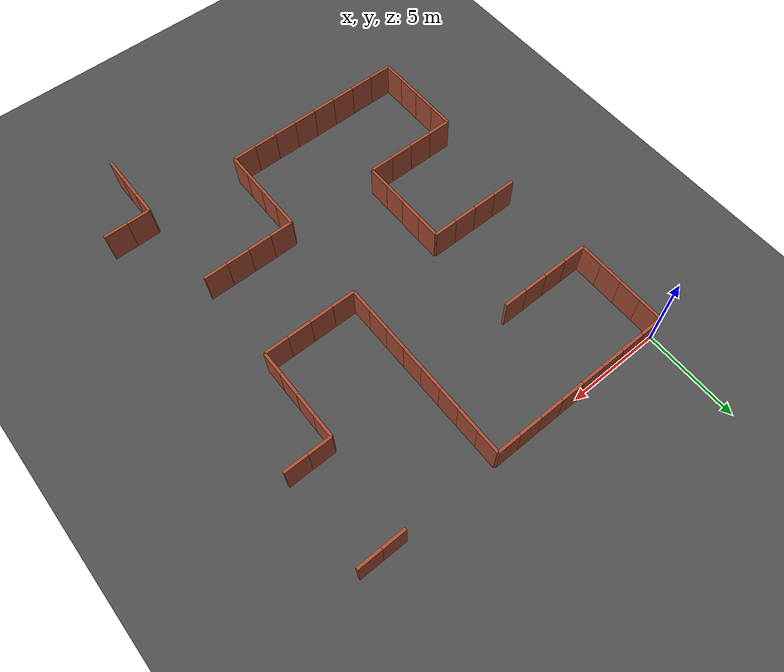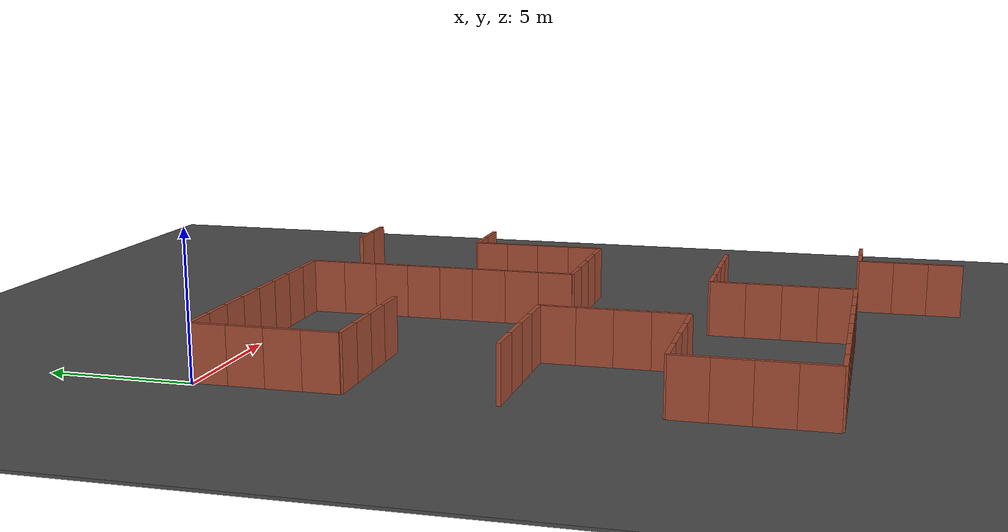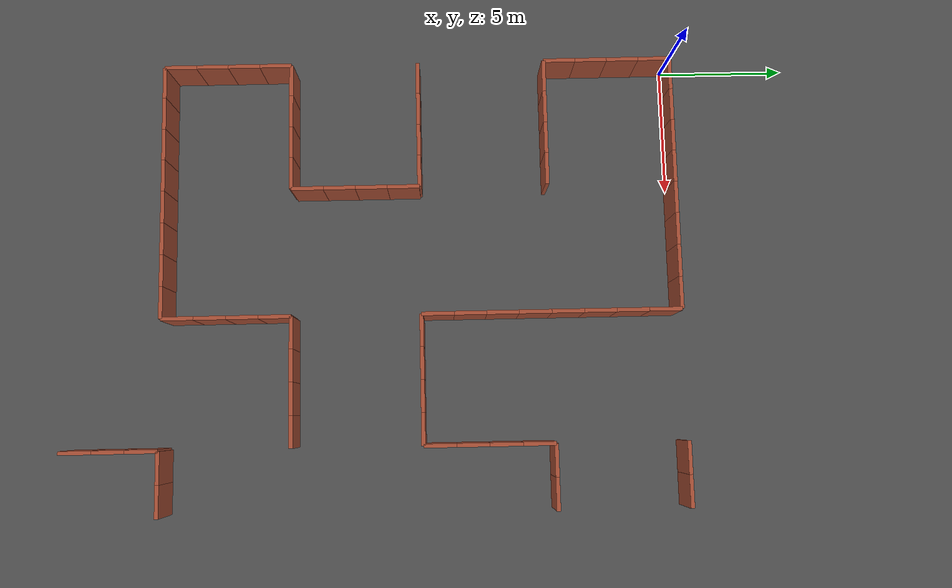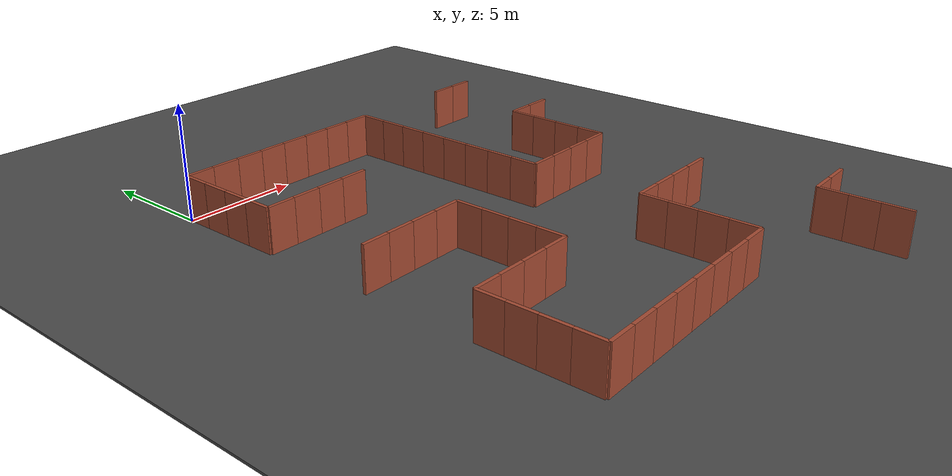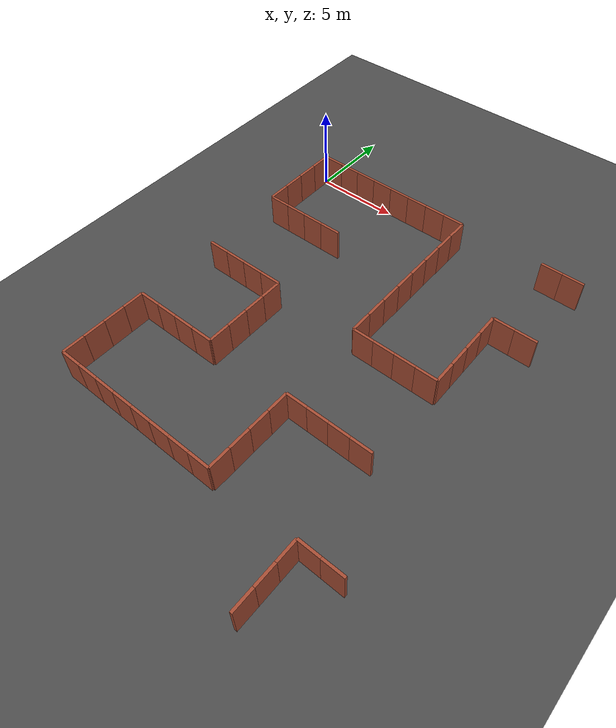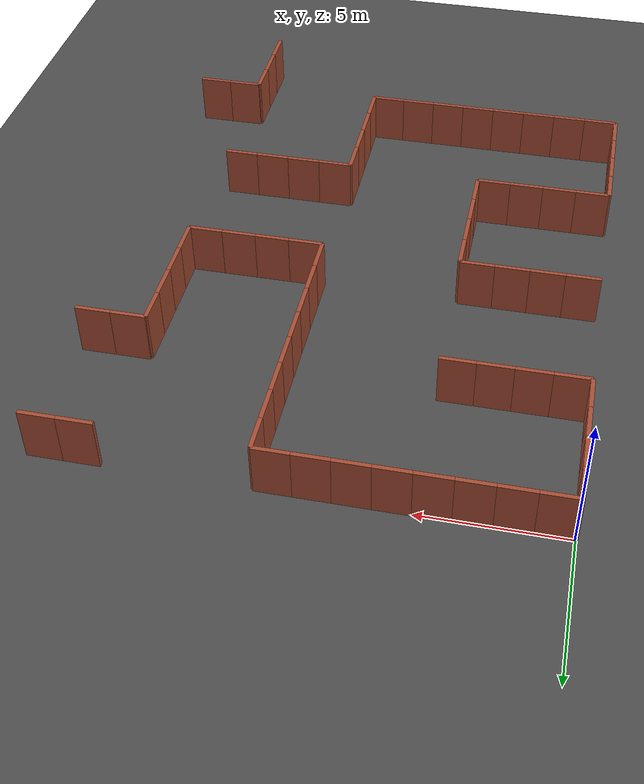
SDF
<sdf version="1.6">
 <world name="default">
  <model name="ground_plane">
   <static>1</static>
   <link name="link">
    <collision name="collision">
     <geometry><plane><normal>0 0 1</normal><size>100 100</size></plane></geometry>
     <surface><friction><ode><mu>100</mu><mu2>50</mu2></ode></friction></surface>
    </collision>
    <visual name="visual">
     <cast_shadows>0</cast_shadows>
     <geometry><plane><normal>0 0 1</normal><size>100 100</size></plane></geometry>
     <material>
      <script><uri>file://media/materials/scripts/gazebo.material</uri><name>Gazebo/Grey</name></script>
     </material>
    </visual>
   </link>
  </model>
  <model name="asphalt_plane">
   <static>1</static>
   <link name="link">
    <collision name="collision"><geometry><box><size>100 100 0.1</size></box></geometry></collision>
    <visual name="visual">
     <cast_shadows>0</cast_shadows>
     <geometry><box><size>100 100 0.1</size></box></geometry>
     <material>
      <script>
       <uri>model://asphalt_plane/materials/scripts</uri>
       <uri>model://asphalt_plane/materials/textures</uri>
       <name>vrc/asphalt</name>
      </script>
     </material>
    </visual>
   </link>
  </model>
  <model name="brick_wall_20_12_vertical1">
   <pose>0.625 -20 0 0 -0 0</pose>
   <link name="Wall_0">
    <collision name="Wall_0_Collision">
     <geometry><box><size>1.25 0.15 2</size></box></geometry>
     <pose>0 0 1 0 -0 0</pose>
    </collision>
    <visual name="Wall_0_Visual">
     <pose>0 0 1 0 -0 0</pose>
     <geometry><box><size>1.25 0.15 2</size></box></geometry>
     <material>
      <script><uri>file://media/materials/scripts/gazebo.material</uri><name>Gazebo/Bricks</name></script>
      <ambient>1 1 1 1</ambient>
     </material>
     <meta><layer>0</layer></meta>
    </visual>
   </link>
   <static>1</static>
  </model>
  <model name="brick_wall_20_12_horizontal1">
   <pose>0 -19.375 0 0 -0 1.5708</pose>
   <link name="Wall_0">
    <collision name="Wall_0_Collision">
     <geometry><box><size>1.25 0.15 2</size></box></geometry>
     <pose>0 0 1 0 -0 0</pose>
    </collision>
    <visual name="Wall_0_Visual">
     <pose>0 0 1 0 -0 0</pose>
     <geometry><box><size>1.25 0.15 2</size></box></geometry>
     <material>
      <script><uri>file://media/materials/scripts/gazebo.material</uri><name>Gazebo/Bricks</name></script>
      <ambient>1 1 1 1</ambient>
     </material>
     <meta><layer>0</layer></meta>
    </visual>
   </link>
   <static>1</static>
  </model>
  <model name="brick_wall_20_13_horizontal1">
   <pose>0 -16.875 0 0 -0 1.5708</pose>
   <link name="Wall_0">
    <collision name="Wall_0_Collision">
     <geometry><box><size>1.25 0.15 2</size></box></geometry>
     <pose>0 0 1 0 -0 0</pose>
    </collision>
    <visual name="Wall_0_Visual">
     <pose>0 0 1 0 -0 0</pose>
     <geometry><box><size>1.25 0.15 2</size></box></geometry>
     <material>
      <script><uri>file://media/materials/scripts/gazebo.material</uri><name>Gazebo/Bricks</name></script>
      <ambient>1 1 1 1</ambient>
     </material>
     <meta><layer>0</layer></meta>
    </visual>
   </link>
   <static>1</static>
  </model>
  <model name="brick_wall_20_13_horizontal2">
   <pose>0 -18.125 0 0 -0 1.5708</pose>
   <link name="Wall_0">
    <collision name="Wall_0_Collision">
     <geometry><box><size>1.25 0.15 2</size></box></geometry>
     <pose>0 0 1 0 -0 0</pose>
    </collision>
    <visual name="Wall_0_Visual">
     <pose>0 0 1 0 -0 0</pose>
     <geometry><box><size>1.25 0.15 2</size></box></geometry>
     <material>
      <script><uri>file://media/materials/scripts/gazebo.material</uri><name>Gazebo/Bricks</name></script>
      <ambient>1 1 1 1</ambient>
     </material>
     <meta><layer>0</layer></meta>
    </visual>
   </link>
   <static>1</static>
  </model>
  <model name="brick_wall_20_14_vertical1">
   <pose>0.625 -15 0 0 -0 0</pose>
   <link name="Wall_0">
    <collision name="Wall_0_Collision">
     <geometry><box><size>1.25 0.15 2</size></box></geometry>
     <pose>0 0 1 0 -0 0</pose>
    </collision>
    <visual name="Wall_0_Visual">
     <pose>0 0 1 0 -0 0</pose>
     <geometry><box><size>1.25 0.15 2</size></box></geometry>
     <material>
      <script><uri>file://media/materials/scripts/gazebo.material</uri><name>Gazebo/Bricks</name></script>
      <ambient>1 1 1 1</ambient>
     </material>
     <meta><layer>0</layer></meta>
    </visual>
   </link>
   <static>1</static>
  </model>
  <model name="brick_wall_20_14_horizontal2">
   <pose>0 -15.625 0 0 -0 1.5708</pose>
   <link name="Wall_0">
    <collision name="Wall_0_Collision">
     <geometry><box><size>1.25 0.15 2</size></box></geometry>
     <pose>0 0 1 0 -0 0</pose>
    </collision>
    <visual name="Wall_0_Visual">
     <pose>0 0 1 0 -0 0</pose>
     <geometry><box><size>1.25 0.15 2</size></box></geometry>
     <material>
      <script><uri>file://media/materials/scripts/gazebo.material</uri><name>Gazebo/Bricks</name></script>
      <ambient>1 1 1 1</ambient>
     </material>
     <meta><layer>0</layer></meta>
    </visual>
   </link>
   <static>1</static>
  </model>
  <model name="brick_wall_20_16_vertical1">
   <pose>0.625 -10 0 0 -0 0</pose>
   <link name="Wall_0">
    <collision name="Wall_0_Collision">
     <geometry><box><size>1.25 0.15 2</size></box></geometry>
     <pose>0 0 1 0 -0 0</pose>
    </collision>
    <visual name="Wall_0_Visual">
     <pose>0 0 1 0 -0 0</pose>
     <geometry><box><size>1.25 0.15 2</size></box></geometry>
     <material>
      <script><uri>file://media/materials/scripts/gazebo.material</uri><name>Gazebo/Bricks</name></script>
      <ambient>1 1 1 1</ambient>
     </material>
     <meta><layer>0</layer></meta>
    </visual>
   </link>
   <static>1</static>
  </model>
  <model name="brick_wall_20_18_vertical1">
   <pose>0.625 -5 0 0 -0 0</pose>
   <link name="Wall_0">
    <collision name="Wall_0_Collision">
     <geometry><box><size>1.25 0.15 2</size></box></geometry>
     <pose>0 0 1 0 -0 0</pose>
    </collision>
    <visual name="Wall_0_Visual">
     <pose>0 0 1 0 -0 0</pose>
     <geometry><box><size>1.25 0.15 2</size></box></geometry>
     <material>
      <script><uri>file://media/materials/scripts/gazebo.material</uri><name>Gazebo/Bricks</name></script>
      <ambient>1 1 1 1</ambient>
     </material>
     <meta><layer>0</layer></meta>
    </visual>
   </link>
   <static>1</static>
  </model>
  <model name="brick_wall_20_18_horizontal1">
   <pose>0 -4.375 0 0 -0 1.5708</pose>
   <link name="Wall_0">
    <collision name="Wall_0_Collision">
     <geometry><box><size>1.25 0.15 2</size></box></geometry>
     <pose>0 0 1 0 -0 0</pose>
    </collision>
    <visual name="Wall_0_Visual">
     <pose>0 0 1 0 -0 0</pose>
     <geometry><box><size>1.25 0.15 2</size></box></geometry>
     <material>
      <script><uri>file://media/materials/scripts/gazebo.material</uri><name>Gazebo/Bricks</name></script>
      <ambient>1 1 1 1</ambient>
     </material>
     <meta><layer>0</layer></meta>
    </visual>
   </link>
   <static>1</static>
  </model>
  <model name="brick_wall_20_19_horizontal1">
   <pose>0 -1.875 0 0 -0 1.5708</pose>
   <link name="Wall_0">
    <collision name="Wall_0_Collision">
     <geometry><box><size>1.25 0.15 2</size></box></geometry>
     <pose>0 0 1 0 -0 0</pose>
    </collision>
    <visual name="Wall_0_Visual">
     <pose>0 0 1 0 -0 0</pose>
     <geometry><box><size>1.25 0.15 2</size></box></geometry>
     <material>
      <script><uri>file://media/materials/scripts/gazebo.material</uri><name>Gazebo/Bricks</name></script>
      <ambient>1 1 1 1</ambient>
     </material>
     <meta><layer>0</layer></meta>
    </visual>
   </link>
   <static>1</static>
  </model>
  <model name="brick_wall_20_19_horizontal2">
   <pose>0 -3.125 0 0 -0 1.5708</pose>
   <link name="Wall_0">
    <collision name="Wall_0_Collision">
     <geometry><box><size>1.25 0.15 2</size></box></geometry>
     <pose>0 0 1 0 -0 0</pose>
    </collision>
    <visual name="Wall_0_Visual">
     <pose>0 0 1 0 -0 0</pose>
     <geometry><box><size>1.25 0.15 2</size></box></geometry>
     <material>
      <script><uri>file://media/materials/scripts/gazebo.material</uri><name>Gazebo/Bricks</name></script>
      <ambient>1 1 1 1</ambient>
     </material>
     <meta><layer>0</layer></meta>
    </visual>
   </link>
   <static>1</static>
  </model>
  <model name="brick_wall_20_20_vertical1">
   <pose>0.625 0 0 0 -0 0</pose>
   <link name="Wall_0">
    <collision name="Wall_0_Collision">
     <geometry><box><size>1.25 0.15 2</size></box></geometry>
     <pose>0 0 1 0 -0 0</pose>
    </collision>
    <visual name="Wall_0_Visual">
     <pose>0 0 1 0 -0 0</pose>
     <geometry><box><size>1.25 0.15 2</size></box></geometry>
     <material>
      <script><uri>file://media/materials/scripts/gazebo.material</uri><name>Gazebo/Bricks</name></script>
      <ambient>1 1 1 1</ambient>
     </material>
     <meta><layer>0</layer></meta>
    </visual>
   </link>
   <static>1</static>
  </model>
  <model name="brick_wall_20_20_horizontal2">
   <pose>0 -0.625 0 0 -0 1.5708</pose>
   <link name="Wall_0">
    <collision name="Wall_0_Collision">
     <geometry><box><size>1.25 0.15 2</size></box></geometry>
     <pose>0 0 1 0 -0 0</pose>
    </collision>
    <visual name="Wall_0_Visual">
     <pose>0 0 1 0 -0 0</pose>
     <geometry><box><size>1.25 0.15 2</size></box></geometry>
     <material>
      <script><uri>file://media/materials/scripts/gazebo.material</uri><name>Gazebo/Bricks</name></script>
      <ambient>1 1 1 1</ambient>
     </material>
     <meta><layer>0</layer></meta>
    </visual>
   </link>
   <static>1</static>
  </model>
  <model name="brick_wall_21_12_vertical1">
   <pose>3.125 -20 0 0 -0 0</pose>
   <link name="Wall_0">
    <collision name="Wall_0_Collision">
     <geometry><box><size>1.25 0.15 2</size></box></geometry>
     <pose>0 0 1 0 -0 0</pose>
    </collision>
    <visual name="Wall_0_Visual">
     <pose>0 0 1 0 -0 0</pose>
     <geometry><box><size>1.25 0.15 2</size></box></geometry>
     <material>
      <script><uri>file://media/materials/scripts/gazebo.material</uri><name>Gazebo/Bricks</name></script>
      <ambient>1 1 1 1</ambient>
     </material>
     <meta><layer>0</layer></meta>
    </visual>
   </link>
   <static>1</static>
  </model>
  <model name="brick_wall_21_12_vertical2">
   <pose>1.875 -20 0 0 -0 0</pose>
   <link name="Wall_0">
    <collision name="Wall_0_Collision">
     <geometry><box><size>1.25 0.15 2</size></box></geometry>
     <pose>0 0 1 0 -0 0</pose>
    </collision>
    <visual name="Wall_0_Visual">
     <pose>0 0 1 0 -0 0</pose>
     <geometry><box><size>1.25 0.15 2</size></box></geometry>
     <material>
      <script><uri>file://media/materials/scripts/gazebo.material</uri><name>Gazebo/Bricks</name></script>
      <ambient>1 1 1 1</ambient>
     </material>
     <meta><layer>0</layer></meta>
    </visual>
   </link>
   <static>1</static>
  </model>
  <model name="brick_wall_21_14_vertical1">
   <pose>3.125 -15 0 0 -0 0</pose>
   <link name="Wall_0">
    <collision name="Wall_0_Collision">
     <geometry><box><size>1.25 0.15 2</size></box></geometry>
     <pose>0 0 1 0 -0 0</pose>
    </collision>
    <visual name="Wall_0_Visual">
     <pose>0 0 1 0 -0 0</pose>
     <geometry><box><size>1.25 0.15 2</size></box></geometry>
     <material>
      <script><uri>file://media/materials/scripts/gazebo.material</uri><name>Gazebo/Bricks</name></script>
      <ambient>1 1 1 1</ambient>
     </material>
     <meta><layer>0</layer></meta>
    </visual>
   </link>
   <static>1</static>
  </model>
  <model name="brick_wall_21_14_vertical2">
   <pose>1.875 -15 0 0 -0 0</pose>
   <link name="Wall_0">
    <collision name="Wall_0_Collision">
     <geometry><box><size>1.25 0.15 2</size></box></geometry>
     <pose>0 0 1 0 -0 0</pose>
    </collision>
    <visual name="Wall_0_Visual">
     <pose>0 0 1 0 -0 0</pose>
     <geometry><box><size>1.25 0.15 2</size></box></geometry>
     <material>
      <script><uri>file://media/materials/scripts/gazebo.material</uri><name>Gazebo/Bricks</name></script>
      <ambient>1 1 1 1</ambient>
     </material>
     <meta><layer>0</layer></meta>
    </visual>
   </link>
   <static>1</static>
  </model>
  <model name="brick_wall_21_16_vertical1">
   <pose>3.125 -10 0 0 -0 0</pose>
   <link name="Wall_0">
    <collision name="Wall_0_Collision">
     <geometry><box><size>1.25 0.15 2</size></box></geometry>
     <pose>0 0 1 0 -0 0</pose>
    </collision>
    <visual name="Wall_0_Visual">
     <pose>0 0 1 0 -0 0</pose>
     <geometry><box><size>1.25 0.15 2</size></box></geometry>
     <material>
      <script><uri>file://media/materials/scripts/gazebo.material</uri><name>Gazebo/Bricks</name></script>
      <ambient>1 1 1 1</ambient>
     </material>
     <meta><layer>0</layer></meta>
    </visual>
   </link>
   <static>1</static>
  </model>
  <model name="brick_wall_21_16_vertical2">
   <pose>1.875 -10 0 0 -0 0</pose>
   <link name="Wall_0">
    <collision name="Wall_0_Collision">
     <geometry><box><size>1.25 0.15 2</size></box></geometry>
     <pose>0 0 1 0 -0 0</pose>
    </collision>
    <visual name="Wall_0_Visual">
     <pose>0 0 1 0 -0 0</pose>
     <geometry><box><size>1.25 0.15 2</size></box></geometry>
     <material>
      <script><uri>file://media/materials/scripts/gazebo.material</uri><name>Gazebo/Bricks</name></script>
      <ambient>1 1 1 1</ambient>
     </material>
     <meta><layer>0</layer></meta>
    </visual>
   </link>
   <static>1</static>
  </model>
  <model name="brick_wall_21_18_vertical1">
   <pose>3.125 -5 0 0 -0 0</pose>
   <link name="Wall_0">
    <collision name="Wall_0_Collision">
     <geometry><box><size>1.25 0.15 2</size></box></geometry>
     <pose>0 0 1 0 -0 0</pose>
    </collision>
    <visual name="Wall_0_Visual">
     <pose>0 0 1 0 -0 0</pose>
     <geometry><box><size>1.25 0.15 2</size></box></geometry>
     <material>
      <script><uri>file://media/materials/scripts/gazebo.material</uri><name>Gazebo/Bricks</name></script>
      <ambient>1 1 1 1</ambient>
     </material>
     <meta><layer>0</layer></meta>
    </visual>
   </link>
   <static>1</static>
  </model>
  <model name="brick_wall_21_18_vertical2">
   <pose>1.875 -5 0 0 -0 0</pose>
   <link name="Wall_0">
    <collision name="Wall_0_Collision">
     <geometry><box><size>1.25 0.15 2</size></box></geometry>
     <pose>0 0 1 0 -0 0</pose>
    </collision>
    <visual name="Wall_0_Visual">
     <pose>0 0 1 0 -0 0</pose>
     <geometry><box><size>1.25 0.15 2</size></box></geometry>
     <material>
      <script><uri>file://media/materials/scripts/gazebo.material</uri><name>Gazebo/Bricks</name></script>
      <ambient>1 1 1 1</ambient>
     </material>
     <meta><layer>0</layer></meta>
    </visual>
   </link>
   <static>1</static>
  </model>
  <model name="brick_wall_21_20_vertical1">
   <pose>3.125 0 0 0 -0 0</pose>
   <link name="Wall_0">
    <collision name="Wall_0_Collision">
     <geometry><box><size>1.25 0.15 2</size></box></geometry>
     <pose>0 0 1 0 -0 0</pose>
    </collision>
    <visual name="Wall_0_Visual">
     <pose>0 0 1 0 -0 0</pose>
     <geometry><box><size>1.25 0.15 2</size></box></geometry>
     <material>
      <script><uri>file://media/materials/scripts/gazebo.material</uri><name>Gazebo/Bricks</name></script>
      <ambient>1 1 1 1</ambient>
     </material>
     <meta><layer>0</layer></meta>
    </visual>
   </link>
   <static>1</static>
  </model>
  <model name="brick_wall_21_20_vertical2">
   <pose>1.875 0 0 0 -0 0</pose>
   <link name="Wall_0">
    <collision name="Wall_0_Collision">
     <geometry><box><size>1.25 0.15 2</size></box></geometry>
     <pose>0 0 1 0 -0 0</pose>
    </collision>
    <visual name="Wall_0_Visual">
     <pose>0 0 1 0 -0 0</pose>
     <geometry><box><size>1.25 0.15 2</size></box></geometry>
     <material>
      <script><uri>file://media/materials/scripts/gazebo.material</uri><name>Gazebo/Bricks</name></script>
      <ambient>1 1 1 1</ambient>
     </material>
     <meta><layer>0</layer></meta>
    </visual>
   </link>
   <static>1</static>
  </model>
  <model name="brick_wall_22_12_vertical1">
   <pose>5.625 -20 0 0 -0 0</pose>
   <link name="Wall_0">
    <collision name="Wall_0_Collision">
     <geometry><box><size>1.25 0.15 2</size></box></geometry>
     <pose>0 0 1 0 -0 0</pose>
    </collision>
    <visual name="Wall_0_Visual">
     <pose>0 0 1 0 -0 0</pose>
     <geometry><box><size>1.25 0.15 2</size></box></geometry>
     <material>
      <script><uri>file://media/materials/scripts/gazebo.material</uri><name>Gazebo/Bricks</name></script>
      <ambient>1 1 1 1</ambient>
     </material>
     <meta><layer>0</layer></meta>
    </visual>
   </link>
   <static>1</static>
  </model>
  <model name="brick_wall_22_12_vertical2">
   <pose>4.375 -20 0 0 -0 0</pose>
   <link name="Wall_0">
    <collision name="Wall_0_Collision">
     <geometry><box><size>1.25 0.15 2</size></box></geometry>
     <pose>0 0 1 0 -0 0</pose>
    </collision>
    <visual name="Wall_0_Visual">
     <pose>0 0 1 0 -0 0</pose>
     <geometry><box><size>1.25 0.15 2</size></box></geometry>
     <material>
      <script><uri>file://media/materials/scripts/gazebo.material</uri><name>Gazebo/Bricks</name></script>
      <ambient>1 1 1 1</ambient>
     </material>
     <meta><layer>0</layer></meta>
    </visual>
   </link>
   <static>1</static>
  </model>
  <model name="brick_wall_22_14_vertical2">
   <pose>4.375 -15 0 0 -0 0</pose>
   <link name="Wall_0">
    <collision name="Wall_0_Collision">
     <geometry><box><size>1.25 0.15 2</size></box></geometry>
     <pose>0 0 1 0 -0 0</pose>
    </collision>
    <visual name="Wall_0_Visual">
     <pose>0 0 1 0 -0 0</pose>
     <geometry><box><size>1.25 0.15 2</size></box></geometry>
     <material>
      <script><uri>file://media/materials/scripts/gazebo.material</uri><name>Gazebo/Bricks</name></script>
      <ambient>1 1 1 1</ambient>
     </material>
     <meta><layer>0</layer></meta>
    </visual>
   </link>
   <static>1</static>
  </model>
  <model name="brick_wall_22_14_horizontal1">
   <pose>5 -14.375 0 0 -0 1.5708</pose>
   <link name="Wall_0">
    <collision name="Wall_0_Collision">
     <geometry><box><size>1.25 0.15 2</size></box></geometry>
     <pose>0 0 1 0 -0 0</pose>
    </collision>
    <visual name="Wall_0_Visual">
     <pose>0 0 1 0 -0 0</pose>
     <geometry><box><size>1.25 0.15 2</size></box></geometry>
     <material>
      <script><uri>file://media/materials/scripts/gazebo.material</uri><name>Gazebo/Bricks</name></script>
      <ambient>1 1 1 1</ambient>
     </material>
     <meta><layer>0</layer></meta>
    </visual>
   </link>
   <static>1</static>
  </model>
  <model name="brick_wall_22_15_horizontal1">
   <pose>5 -11.875 0 0 -0 1.5708</pose>
   <link name="Wall_0">
    <collision name="Wall_0_Collision">
     <geometry><box><size>1.25 0.15 2</size></box></geometry>
     <pose>0 0 1 0 -0 0</pose>
    </collision>
    <visual name="Wall_0_Visual">
     <pose>0 0 1 0 -0 0</pose>
     <geometry><box><size>1.25 0.15 2</size></box></geometry>
     <material>
      <script><uri>file://media/materials/scripts/gazebo.material</uri><name>Gazebo/Bricks</name></script>
      <ambient>1 1 1 1</ambient>
     </material>
     <meta><layer>0</layer></meta>
    </visual>
   </link>
   <static>1</static>
  </model>
  <model name="brick_wall_22_15_horizontal2">
   <pose>5 -13.125 0 0 -0 1.5708</pose>
   <link name="Wall_0">
    <collision name="Wall_0_Collision">
     <geometry><box><size>1.25 0.15 2</size></box></geometry>
     <pose>0 0 1 0 -0 0</pose>
    </collision>
    <visual name="Wall_0_Visual">
     <pose>0 0 1 0 -0 0</pose>
     <geometry><box><size>1.25 0.15 2</size></box></geometry>
     <material>
      <script><uri>file://media/materials/scripts/gazebo.material</uri><name>Gazebo/Bricks</name></script>
      <ambient>1 1 1 1</ambient>
     </material>
     <meta><layer>0</layer></meta>
    </visual>
   </link>
   <static>1</static>
  </model>
  <model name="brick_wall_22_16_vertical2">
   <pose>4.375 -10 0 0 -0 0</pose>
   <link name="Wall_0">
    <collision name="Wall_0_Collision">
     <geometry><box><size>1.25 0.15 2</size></box></geometry>
     <pose>0 0 1 0 -0 0</pose>
    </collision>
    <visual name="Wall_0_Visual">
     <pose>0 0 1 0 -0 0</pose>
     <geometry><box><size>1.25 0.15 2</size></box></geometry>
     <material>
      <script><uri>file://media/materials/scripts/gazebo.material</uri><name>Gazebo/Bricks</name></script>
      <ambient>1 1 1 1</ambient>
     </material>
     <meta><layer>0</layer></meta>
    </visual>
   </link>
   <static>1</static>
  </model>
  <model name="brick_wall_22_16_horizontal2">
   <pose>5 -10.625 0 0 -0 1.5708</pose>
   <link name="Wall_0">
    <collision name="Wall_0_Collision">
     <geometry><box><size>1.25 0.15 2</size></box></geometry>
     <pose>0 0 1 0 -0 0</pose>
    </collision>
    <visual name="Wall_0_Visual">
     <pose>0 0 1 0 -0 0</pose>
     <geometry><box><size>1.25 0.15 2</size></box></geometry>
     <material>
      <script><uri>file://media/materials/scripts/gazebo.material</uri><name>Gazebo/Bricks</name></script>
      <ambient>1 1 1 1</ambient>
     </material>
     <meta><layer>0</layer></meta>
    </visual>
   </link>
   <static>1</static>
  </model>
  <model name="brick_wall_22_18_vertical2">
   <pose>4.375 -5 0 0 -0 0</pose>
   <link name="Wall_0">
    <collision name="Wall_0_Collision">
     <geometry><box><size>1.25 0.15 2</size></box></geometry>
     <pose>0 0 1 0 -0 0</pose>
    </collision>
    <visual name="Wall_0_Visual">
     <pose>0 0 1 0 -0 0</pose>
     <geometry><box><size>1.25 0.15 2</size></box></geometry>
     <material>
      <script><uri>file://media/materials/scripts/gazebo.material</uri><name>Gazebo/Bricks</name></script>
      <ambient>1 1 1 1</ambient>
     </material>
     <meta><layer>0</layer></meta>
    </visual>
   </link>
   <static>1</static>
  </model>
  <model name="brick_wall_22_20_vertical1">
   <pose>5.625 0 0 0 -0 0</pose>
   <link name="Wall_0">
    <collision name="Wall_0_Collision">
     <geometry><box><size>1.25 0.15 2</size></box></geometry>
     <pose>0 0 1 0 -0 0</pose>
    </collision>
    <visual name="Wall_0_Visual">
     <pose>0 0 1 0 -0 0</pose>
     <geometry><box><size>1.25 0.15 2</size></box></geometry>
     <material>
      <script><uri>file://media/materials/scripts/gazebo.material</uri><name>Gazebo/Bricks</name></script>
      <ambient>1 1 1 1</ambient>
     </material>
     <meta><layer>0</layer></meta>
    </visual>
   </link>
   <static>1</static>
  </model>
  <model name="brick_wall_22_20_vertical2">
   <pose>4.375 0 0 0 -0 0</pose>
   <link name="Wall_0">
    <collision name="Wall_0_Collision">
     <geometry><box><size>1.25 0.15 2</size></box></geometry>
     <pose>0 0 1 0 -0 0</pose>
    </collision>
    <visual name="Wall_0_Visual">
     <pose>0 0 1 0 -0 0</pose>
     <geometry><box><size>1.25 0.15 2</size></box></geometry>
     <material>
      <script><uri>file://media/materials/scripts/gazebo.material</uri><name>Gazebo/Bricks</name></script>
      <ambient>1 1 1 1</ambient>
     </material>
     <meta><layer>0</layer></meta>
    </visual>
   </link>
   <static>1</static>
  </model>
  <model name="brick_wall_23_12_vertical1">
   <pose>8.125 -20 0 0 -0 0</pose>
   <link name="Wall_0">
    <collision name="Wall_0_Collision">
     <geometry><box><size>1.25 0.15 2</size></box></geometry>
     <pose>0 0 1 0 -0 0</pose>
    </collision>
    <visual name="Wall_0_Visual">
     <pose>0 0 1 0 -0 0</pose>
     <geometry><box><size>1.25 0.15 2</size></box></geometry>
     <material>
      <script><uri>file://media/materials/scripts/gazebo.material</uri><name>Gazebo/Bricks</name></script>
      <ambient>1 1 1 1</ambient>
     </material>
     <meta><layer>0</layer></meta>
    </visual>
   </link>
   <static>1</static>
  </model>
  <model name="brick_wall_23_12_vertical2">
   <pose>6.875 -20 0 0 -0 0</pose>
   <link name="Wall_0">
    <collision name="Wall_0_Collision">
     <geometry><box><size>1.25 0.15 2</size></box></geometry>
     <pose>0 0 1 0 -0 0</pose>
    </collision>
    <visual name="Wall_0_Visual">
     <pose>0 0 1 0 -0 0</pose>
     <geometry><box><size>1.25 0.15 2</size></box></geometry>
     <material>
      <script><uri>file://media/materials/scripts/gazebo.material</uri><name>Gazebo/Bricks</name></script>
      <ambient>1 1 1 1</ambient>
     </material>
     <meta><layer>0</layer></meta>
    </visual>
   </link>
   <static>1</static>
  </model>
  <model name="brick_wall_23_20_vertical1">
   <pose>8.125 0 0 0 -0 0</pose>
   <link name="Wall_0">
    <collision name="Wall_0_Collision">
     <geometry><box><size>1.25 0.15 2</size></box></geometry>
     <pose>0 0 1 0 -0 0</pose>
    </collision>
    <visual name="Wall_0_Visual">
     <pose>0 0 1 0 -0 0</pose>
     <geometry><box><size>1.25 0.15 2</size></box></geometry>
     <material>
      <script><uri>file://media/materials/scripts/gazebo.material</uri><name>Gazebo/Bricks</name></script>
      <ambient>1 1 1 1</ambient>
     </material>
     <meta><layer>0</layer></meta>
    </visual>
   </link>
   <static>1</static>
  </model>
  <model name="brick_wall_23_20_vertical2">
   <pose>6.875 0 0 0 -0 0</pose>
   <link name="Wall_0">
    <collision name="Wall_0_Collision">
     <geometry><box><size>1.25 0.15 2</size></box></geometry>
     <pose>0 0 1 0 -0 0</pose>
    </collision>
    <visual name="Wall_0_Visual">
     <pose>0 0 1 0 -0 0</pose>
     <geometry><box><size>1.25 0.15 2</size></box></geometry>
     <material>
      <script><uri>file://media/materials/scripts/gazebo.material</uri><name>Gazebo/Bricks</name></script>
      <ambient>1 1 1 1</ambient>
     </material>
     <meta><layer>0</layer></meta>
    </visual>
   </link>
   <static>1</static>
  </model>
  <model name="brick_wall_24_12_vertical2">
   <pose>9.375 -20 0 0 -0 0</pose>
   <link name="Wall_0">
    <collision name="Wall_0_Collision">
     <geometry><box><size>1.25 0.15 2</size></box></geometry>
     <pose>0 0 1 0 -0 0</pose>
    </collision>
    <visual name="Wall_0_Visual">
     <pose>0 0 1 0 -0 0</pose>
     <geometry><box><size>1.25 0.15 2</size></box></geometry>
     <material>
      <script><uri>file://media/materials/scripts/gazebo.material</uri><name>Gazebo/Bricks</name></script>
      <ambient>1 1 1 1</ambient>
     </material>
     <meta><layer>0</layer></meta>
    </visual>
   </link>
   <static>1</static>
  </model>
  <model name="brick_wall_24_12_horizontal1">
   <pose>10 -19.375 0 0 -0 1.5708</pose>
   <link name="Wall_0">
    <collision name="Wall_0_Collision">
     <geometry><box><size>1.25 0.15 2</size></box></geometry>
     <pose>0 0 1 0 -0 0</pose>
    </collision>
    <visual name="Wall_0_Visual">
     <pose>0 0 1 0 -0 0</pose>
     <geometry><box><size>1.25 0.15 2</size></box></geometry>
     <material>
      <script><uri>file://media/materials/scripts/gazebo.material</uri><name>Gazebo/Bricks</name></script>
      <ambient>1 1 1 1</ambient>
     </material>
     <meta><layer>0</layer></meta>
    </visual>
   </link>
   <static>1</static>
  </model>
  <model name="brick_wall_24_13_horizontal1">
   <pose>10 -16.875 0 0 -0 1.5708</pose>
   <link name="Wall_0">
    <collision name="Wall_0_Collision">
     <geometry><box><size>1.25 0.15 2</size></box></geometry>
     <pose>0 0 1 0 -0 0</pose>
    </collision>
    <visual name="Wall_0_Visual">
     <pose>0 0 1 0 -0 0</pose>
     <geometry><box><size>1.25 0.15 2</size></box></geometry>
     <material>
      <script><uri>file://media/materials/scripts/gazebo.material</uri><name>Gazebo/Bricks</name></script>
      <ambient>1 1 1 1</ambient>
     </material>
     <meta><layer>0</layer></meta>
    </visual>
   </link>
   <static>1</static>
  </model>
  <model name="brick_wall_24_13_horizontal2">
   <pose>10 -18.125 0 0 -0 1.5708</pose>
   <link name="Wall_0">
    <collision name="Wall_0_Collision">
     <geometry><box><size>1.25 0.15 2</size></box></geometry>
     <pose>0 0 1 0 -0 0</pose>
    </collision>
    <visual name="Wall_0_Visual">
     <pose>0 0 1 0 -0 0</pose>
     <geometry><box><size>1.25 0.15 2</size></box></geometry>
     <material>
      <script><uri>file://media/materials/scripts/gazebo.material</uri><name>Gazebo/Bricks</name></script>
      <ambient>1 1 1 1</ambient>
     </material>
     <meta><layer>0</layer></meta>
    </visual>
   </link>
   <static>1</static>
  </model>
  <model name="brick_wall_24_14_vertical1">
   <pose>10.625 -15 0 0 -0 0</pose>
   <link name="Wall_0">
    <collision name="Wall_0_Collision">
     <geometry><box><size>1.25 0.15 2</size></box></geometry>
     <pose>0 0 1 0 -0 0</pose>
    </collision>
    <visual name="Wall_0_Visual">
     <pose>0 0 1 0 -0 0</pose>
     <geometry><box><size>1.25 0.15 2</size></box></geometry>
     <material>
      <script><uri>file://media/materials/scripts/gazebo.material</uri><name>Gazebo/Bricks</name></script>
      <ambient>1 1 1 1</ambient>
     </material>
     <meta><layer>0</layer></meta>
    </visual>
   </link>
   <static>1</static>
  </model>
  <model name="brick_wall_24_14_horizontal2">
   <pose>10 -15.625 0 0 -0 1.5708</pose>
   <link name="Wall_0">
    <collision name="Wall_0_Collision">
     <geometry><box><size>1.25 0.15 2</size></box></geometry>
     <pose>0 0 1 0 -0 0</pose>
    </collision>
    <visual name="Wall_0_Visual">
     <pose>0 0 1 0 -0 0</pose>
     <geometry><box><size>1.25 0.15 2</size></box></geometry>
     <material>
      <script><uri>file://media/materials/scripts/gazebo.material</uri><name>Gazebo/Bricks</name></script>
      <ambient>1 1 1 1</ambient>
     </material>
     <meta><layer>0</layer></meta>
    </visual>
   </link>
   <static>1</static>
  </model>
  <model name="brick_wall_24_16_vertical1">
   <pose>10.625 -10 0 0 -0 0</pose>
   <link name="Wall_0">
    <collision name="Wall_0_Collision">
     <geometry><box><size>1.25 0.15 2</size></box></geometry>
     <pose>0 0 1 0 -0 0</pose>
    </collision>
    <visual name="Wall_0_Visual">
     <pose>0 0 1 0 -0 0</pose>
     <geometry><box><size>1.25 0.15 2</size></box></geometry>
     <material>
      <script><uri>file://media/materials/scripts/gazebo.material</uri><name>Gazebo/Bricks</name></script>
      <ambient>1 1 1 1</ambient>
     </material>
     <meta><layer>0</layer></meta>
    </visual>
   </link>
   <static>1</static>
  </model>
  <model name="brick_wall_24_16_horizontal1">
   <pose>10 -9.375 0 0 -0 1.5708</pose>
   <link name="Wall_0">
    <collision name="Wall_0_Collision">
     <geometry><box><size>1.25 0.15 2</size></box></geometry>
     <pose>0 0 1 0 -0 0</pose>
    </collision>
    <visual name="Wall_0_Visual">
     <pose>0 0 1 0 -0 0</pose>
     <geometry><box><size>1.25 0.15 2</size></box></geometry>
     <material>
      <script><uri>file://media/materials/scripts/gazebo.material</uri><name>Gazebo/Bricks</name></script>
      <ambient>1 1 1 1</ambient>
     </material>
     <meta><layer>0</layer></meta>
    </visual>
   </link>
   <static>1</static>
  </model>
  <model name="brick_wall_24_17_horizontal1">
   <pose>10 -6.875 0 0 -0 1.5708</pose>
   <link name="Wall_0">
    <collision name="Wall_0_Collision">
     <geometry><box><size>1.25 0.15 2</size></box></geometry>
     <pose>0 0 1 0 -0 0</pose>
    </collision>
    <visual name="Wall_0_Visual">
     <pose>0 0 1 0 -0 0</pose>
     <geometry><box><size>1.25 0.15 2</size></box></geometry>
     <material>
      <script><uri>file://media/materials/scripts/gazebo.material</uri><name>Gazebo/Bricks</name></script>
      <ambient>1 1 1 1</ambient>
     </material>
     <meta><layer>0</layer></meta>
    </visual>
   </link>
   <static>1</static>
  </model>
  <model name="brick_wall_24_17_horizontal2">
   <pose>10 -8.125 0 0 -0 1.5708</pose>
   <link name="Wall_0">
    <collision name="Wall_0_Collision">
     <geometry><box><size>1.25 0.15 2</size></box></geometry>
     <pose>0 0 1 0 -0 0</pose>
    </collision>
    <visual name="Wall_0_Visual">
     <pose>0 0 1 0 -0 0</pose>
     <geometry><box><size>1.25 0.15 2</size></box></geometry>
     <material>
      <script><uri>file://media/materials/scripts/gazebo.material</uri><name>Gazebo/Bricks</name></script>
      <ambient>1 1 1 1</ambient>
     </material>
     <meta><layer>0</layer></meta>
    </visual>
   </link>
   <static>1</static>
  </model>
  <model name="brick_wall_24_18_horizontal1">
   <pose>10 -4.375 0 0 -0 1.5708</pose>
   <link name="Wall_0">
    <collision name="Wall_0_Collision">
     <geometry><box><size>1.25 0.15 2</size></box></geometry>
     <pose>0 0 1 0 -0 0</pose>
    </collision>
    <visual name="Wall_0_Visual">
     <pose>0 0 1 0 -0 0</pose>
     <geometry><box><size>1.25 0.15 2</size></box></geometry>
     <material>
      <script><uri>file://media/materials/scripts/gazebo.material</uri><name>Gazebo/Bricks</name></script>
      <ambient>1 1 1 1</ambient>
     </material>
     <meta><layer>0</layer></meta>
    </visual>
   </link>
   <static>1</static>
  </model>
  <model name="brick_wall_24_18_horizontal2">
   <pose>10 -5.625 0 0 -0 1.5708</pose>
   <link name="Wall_0">
    <collision name="Wall_0_Collision">
     <geometry><box><size>1.25 0.15 2</size></box></geometry>
     <pose>0 0 1 0 -0 0</pose>
    </collision>
    <visual name="Wall_0_Visual">
     <pose>0 0 1 0 -0 0</pose>
     <geometry><box><size>1.25 0.15 2</size></box></geometry>
     <material>
      <script><uri>file://media/materials/scripts/gazebo.material</uri><name>Gazebo/Bricks</name></script>
      <ambient>1 1 1 1</ambient>
     </material>
     <meta><layer>0</layer></meta>
    </visual>
   </link>
   <static>1</static>
  </model>
  <model name="brick_wall_24_19_horizontal1">
   <pose>10 -1.875 0 0 -0 1.5708</pose>
   <link name="Wall_0">
    <collision name="Wall_0_Collision">
     <geometry><box><size>1.25 0.15 2</size></box></geometry>
     <pose>0 0 1 0 -0 0</pose>
    </collision>
    <visual name="Wall_0_Visual">
     <pose>0 0 1 0 -0 0</pose>
     <geometry><box><size>1.25 0.15 2</size></box></geometry>
     <material>
      <script><uri>file://media/materials/scripts/gazebo.material</uri><name>Gazebo/Bricks</name></script>
      <ambient>1 1 1 1</ambient>
     </material>
     <meta><layer>0</layer></meta>
    </visual>
   </link>
   <static>1</static>
  </model>
  <model name="brick_wall_24_19_horizontal2">
   <pose>10 -3.125 0 0 -0 1.5708</pose>
   <link name="Wall_0">
    <collision name="Wall_0_Collision">
     <geometry><box><size>1.25 0.15 2</size></box></geometry>
     <pose>0 0 1 0 -0 0</pose>
    </collision>
    <visual name="Wall_0_Visual">
     <pose>0 0 1 0 -0 0</pose>
     <geometry><box><size>1.25 0.15 2</size></box></geometry>
     <material>
      <script><uri>file://media/materials/scripts/gazebo.material</uri><name>Gazebo/Bricks</name></script>
      <ambient>1 1 1 1</ambient>
     </material>
     <meta><layer>0</layer></meta>
    </visual>
   </link>
   <static>1</static>
  </model>
  <model name="brick_wall_24_20_vertical2">
   <pose>9.375 0 0 0 -0 0</pose>
   <link name="Wall_0">
    <collision name="Wall_0_Collision">
     <geometry><box><size>1.25 0.15 2</size></box></geometry>
     <pose>0 0 1 0 -0 0</pose>
    </collision>
    <visual name="Wall_0_Visual">
     <pose>0 0 1 0 -0 0</pose>
     <geometry><box><size>1.25 0.15 2</size></box></geometry>
     <material>
      <script><uri>file://media/materials/scripts/gazebo.material</uri><name>Gazebo/Bricks</name></script>
      <ambient>1 1 1 1</ambient>
     </material>
     <meta><layer>0</layer></meta>
    </visual>
   </link>
   <static>1</static>
  </model>
  <model name="brick_wall_24_20_horizontal2">
   <pose>10 -0.625 0 0 -0 1.5708</pose>
   <link name="Wall_0">
    <collision name="Wall_0_Collision">
     <geometry><box><size>1.25 0.15 2</size></box></geometry>
     <pose>0 0 1 0 -0 0</pose>
    </collision>
    <visual name="Wall_0_Visual">
     <pose>0 0 1 0 -0 0</pose>
     <geometry><box><size>1.25 0.15 2</size></box></geometry>
     <material>
      <script><uri>file://media/materials/scripts/gazebo.material</uri><name>Gazebo/Bricks</name></script>
      <ambient>1 1 1 1</ambient>
     </material>
     <meta><layer>0</layer></meta>
    </visual>
   </link>
   <static>1</static>
  </model>
  <model name="brick_wall_25_14_vertical1">
   <pose>13.125 -15 0 0 -0 0</pose>
   <link name="Wall_0">
    <collision name="Wall_0_Collision">
     <geometry><box><size>1.25 0.15 2</size></box></geometry>
     <pose>0 0 1 0 -0 0</pose>
    </collision>
    <visual name="Wall_0_Visual">
     <pose>0 0 1 0 -0 0</pose>
     <geometry><box><size>1.25 0.15 2</size></box></geometry>
     <material>
      <script><uri>file://media/materials/scripts/gazebo.material</uri><name>Gazebo/Bricks</name></script>
      <ambient>1 1 1 1</ambient>
     </material>
     <meta><layer>0</layer></meta>
    </visual>
   </link>
   <static>1</static>
  </model>
  <model name="brick_wall_25_14_vertical2">
   <pose>11.875 -15 0 0 -0 0</pose>
   <link name="Wall_0">
    <collision name="Wall_0_Collision">
     <geometry><box><size>1.25 0.15 2</size></box></geometry>
     <pose>0 0 1 0 -0 0</pose>
    </collision>
    <visual name="Wall_0_Visual">
     <pose>0 0 1 0 -0 0</pose>
     <geometry><box><size>1.25 0.15 2</size></box></geometry>
     <material>
      <script><uri>file://media/materials/scripts/gazebo.material</uri><name>Gazebo/Bricks</name></script>
      <ambient>1 1 1 1</ambient>
     </material>
     <meta><layer>0</layer></meta>
    </visual>
   </link>
   <static>1</static>
  </model>
  <model name="brick_wall_25_16_vertical1">
   <pose>13.125 -10 0 0 -0 0</pose>
   <link name="Wall_0">
    <collision name="Wall_0_Collision">
     <geometry><box><size>1.25 0.15 2</size></box></geometry>
     <pose>0 0 1 0 -0 0</pose>
    </collision>
    <visual name="Wall_0_Visual">
     <pose>0 0 1 0 -0 0</pose>
     <geometry><box><size>1.25 0.15 2</size></box></geometry>
     <material>
      <script><uri>file://media/materials/scripts/gazebo.material</uri><name>Gazebo/Bricks</name></script>
      <ambient>1 1 1 1</ambient>
     </material>
     <meta><layer>0</layer></meta>
    </visual>
   </link>
   <static>1</static>
  </model>
  <model name="brick_wall_25_16_vertical2">
   <pose>11.875 -10 0 0 -0 0</pose>
   <link name="Wall_0">
    <collision name="Wall_0_Collision">
     <geometry><box><size>1.25 0.15 2</size></box></geometry>
     <pose>0 0 1 0 -0 0</pose>
    </collision>
    <visual name="Wall_0_Visual">
     <pose>0 0 1 0 -0 0</pose>
     <geometry><box><size>1.25 0.15 2</size></box></geometry>
     <material>
      <script><uri>file://media/materials/scripts/gazebo.material</uri><name>Gazebo/Bricks</name></script>
      <ambient>1 1 1 1</ambient>
     </material>
     <meta><layer>0</layer></meta>
    </visual>
   </link>
   <static>1</static>
  </model>
  <model name="brick_wall_26_11_horizontal1">
   <pose>15 -21.875 0 0 -0 1.5708</pose>
   <link name="Wall_0">
    <collision name="Wall_0_Collision">
     <geometry><box><size>1.25 0.15 2</size></box></geometry>
     <pose>0 0 1 0 -0 0</pose>
    </collision>
    <visual name="Wall_0_Visual">
     <pose>0 0 1 0 -0 0</pose>
     <geometry><box><size>1.25 0.15 2</size></box></geometry>
     <material>
      <script><uri>file://media/materials/scripts/gazebo.material</uri><name>Gazebo/Bricks</name></script>
      <ambient>1 1 1 1</ambient>
     </material>
     <meta><layer>0</layer></meta>
    </visual>
   </link>
   <static>1</static>
  </model>
  <model name="brick_wall_26_11_horizontal2">
   <pose>15 -23.125 0 0 -0 1.5708</pose>
   <link name="Wall_0">
    <collision name="Wall_0_Collision">
     <geometry><box><size>1.25 0.15 2</size></box></geometry>
     <pose>0 0 1 0 -0 0</pose>
    </collision>
    <visual name="Wall_0_Visual">
     <pose>0 0 1 0 -0 0</pose>
     <geometry><box><size>1.25 0.15 2</size></box></geometry>
     <material>
      <script><uri>file://media/materials/scripts/gazebo.material</uri><name>Gazebo/Bricks</name></script>
      <ambient>1 1 1 1</ambient>
     </material>
     <meta><layer>0</layer></meta>
    </visual>
   </link>
   <static>1</static>
  </model>
  <model name="brick_wall_26_12_vertical1">
   <pose>15.625 -20 0 0 -0 0</pose>
   <link name="Wall_0">
    <collision name="Wall_0_Collision">
     <geometry><box><size>1.25 0.15 2</size></box></geometry>
     <pose>0 0 1 0 -0 0</pose>
    </collision>
    <visual name="Wall_0_Visual">
     <pose>0 0 1 0 -0 0</pose>
     <geometry><box><size>1.25 0.15 2</size></box></geometry>
     <material>
      <script><uri>file://media/materials/scripts/gazebo.material</uri><name>Gazebo/Bricks</name></script>
      <ambient>1 1 1 1</ambient>
     </material>
     <meta><layer>0</layer></meta>
    </visual>
   </link>
   <static>1</static>
  </model>
  <model name="brick_wall_26_12_horizontal2">
   <pose>15 -20.625 0 0 -0 1.5708</pose>
   <link name="Wall_0">
    <collision name="Wall_0_Collision">
     <geometry><box><size>1.25 0.15 2</size></box></geometry>
     <pose>0 0 1 0 -0 0</pose>
    </collision>
    <visual name="Wall_0_Visual">
     <pose>0 0 1 0 -0 0</pose>
     <geometry><box><size>1.25 0.15 2</size></box></geometry>
     <material>
      <script><uri>file://media/materials/scripts/gazebo.material</uri><name>Gazebo/Bricks</name></script>
      <ambient>1 1 1 1</ambient>
     </material>
     <meta><layer>0</layer></meta>
    </visual>
   </link>
   <static>1</static>
  </model>
  <model name="brick_wall_26_14_vertical2">
   <pose>14.375 -15 0 0 -0 0</pose>
   <link name="Wall_0">
    <collision name="Wall_0_Collision">
     <geometry><box><size>1.25 0.15 2</size></box></geometry>
     <pose>0 0 1 0 -0 0</pose>
    </collision>
    <visual name="Wall_0_Visual">
     <pose>0 0 1 0 -0 0</pose>
     <geometry><box><size>1.25 0.15 2</size></box></geometry>
     <material>
      <script><uri>file://media/materials/scripts/gazebo.material</uri><name>Gazebo/Bricks</name></script>
      <ambient>1 1 1 1</ambient>
     </material>
     <meta><layer>0</layer></meta>
    </visual>
   </link>
   <static>1</static>
  </model>
  <model name="brick_wall_26_16_vertical2">
   <pose>14.375 -10 0 0 -0 0</pose>
   <link name="Wall_0">
    <collision name="Wall_0_Collision">
     <geometry><box><size>1.25 0.15 2</size></box></geometry>
     <pose>0 0 1 0 -0 0</pose>
    </collision>
    <visual name="Wall_0_Visual">
     <pose>0 0 1 0 -0 0</pose>
     <geometry><box><size>1.25 0.15 2</size></box></geometry>
     <material>
      <script><uri>file://media/materials/scripts/gazebo.material</uri><name>Gazebo/Bricks</name></script>
      <ambient>1 1 1 1</ambient>
     </material>
     <meta><layer>0</layer></meta>
    </visual>
   </link>
   <static>1</static>
  </model>
  <model name="brick_wall_26_16_horizontal1">
   <pose>15 -9.375 0 0 -0 1.5708</pose>
   <link name="Wall_0">
    <collision name="Wall_0_Collision">
     <geometry><box><size>1.25 0.15 2</size></box></geometry>
     <pose>0 0 1 0 -0 0</pose>
    </collision>
    <visual name="Wall_0_Visual">
     <pose>0 0 1 0 -0 0</pose>
     <geometry><box><size>1.25 0.15 2</size></box></geometry>
     <material>
      <script><uri>file://media/materials/scripts/gazebo.material</uri><name>Gazebo/Bricks</name></script>
      <ambient>1 1 1 1</ambient>
     </material>
     <meta><layer>0</layer></meta>
    </visual>
   </link>
   <static>1</static>
  </model>
  <model name="brick_wall_26_17_horizontal1">
   <pose>15 -6.875 0 0 -0 1.5708</pose>
   <link name="Wall_0">
    <collision name="Wall_0_Collision">
     <geometry><box><size>1.25 0.15 2</size></box></geometry>
     <pose>0 0 1 0 -0 0</pose>
    </collision>
    <visual name="Wall_0_Visual">
     <pose>0 0 1 0 -0 0</pose>
     <geometry><box><size>1.25 0.15 2</size></box></geometry>
     <material>
      <script><uri>file://media/materials/scripts/gazebo.material</uri><name>Gazebo/Bricks</name></script>
      <ambient>1 1 1 1</ambient>
     </material>
     <meta><layer>0</layer></meta>
    </visual>
   </link>
   <static>1</static>
  </model>
  <model name="brick_wall_26_17_horizontal2">
   <pose>15 -8.125 0 0 -0 1.5708</pose>
   <link name="Wall_0">
    <collision name="Wall_0_Collision">
     <geometry><box><size>1.25 0.15 2</size></box></geometry>
     <pose>0 0 1 0 -0 0</pose>
    </collision>
    <visual name="Wall_0_Visual">
     <pose>0 0 1 0 -0 0</pose>
     <geometry><box><size>1.25 0.15 2</size></box></geometry>
     <material>
      <script><uri>file://media/materials/scripts/gazebo.material</uri><name>Gazebo/Bricks</name></script>
      <ambient>1 1 1 1</ambient>
     </material>
     <meta><layer>0</layer></meta>
    </visual>
   </link>
   <static>1</static>
  </model>
  <model name="brick_wall_26_18_vertical1">
   <pose>15.625 -5 0 0 -0 0</pose>
   <link name="Wall_0">
    <collision name="Wall_0_Collision">
     <geometry><box><size>1.25 0.15 2</size></box></geometry>
     <pose>0 0 1 0 -0 0</pose>
    </collision>
    <visual name="Wall_0_Visual">
     <pose>0 0 1 0 -0 0</pose>
     <geometry><box><size>1.25 0.15 2</size></box></geometry>
     <material>
      <script><uri>file://media/materials/scripts/gazebo.material</uri><name>Gazebo/Bricks</name></script>
      <ambient>1 1 1 1</ambient>
     </material>
     <meta><layer>0</layer></meta>
    </visual>
   </link>
   <static>1</static>
  </model>
  <model name="brick_wall_26_18_horizontal2">
   <pose>15 -5.625 0 0 -0 1.5708</pose>
   <link name="Wall_0">
    <collision name="Wall_0_Collision">
     <geometry><box><size>1.25 0.15 2</size></box></geometry>
     <pose>0 0 1 0 -0 0</pose>
    </collision>
    <visual name="Wall_0_Visual">
     <pose>0 0 1 0 -0 0</pose>
     <geometry><box><size>1.25 0.15 2</size></box></geometry>
     <material>
      <script><uri>file://media/materials/scripts/gazebo.material</uri><name>Gazebo/Bricks</name></script>
      <ambient>1 1 1 1</ambient>
     </material>
     <meta><layer>0</layer></meta>
    </visual>
   </link>
   <static>1</static>
  </model>
  <model name="brick_wall_26_20_vertical1">
   <pose>15.625 0 0 0 -0 0</pose>
   <link name="Wall_0">
    <collision name="Wall_0_Collision">
     <geometry><box><size>1.25 0.15 2</size></box></geometry>
     <pose>0 0 1 0 -0 0</pose>
    </collision>
    <visual name="Wall_0_Visual">
     <pose>0 0 1 0 -0 0</pose>
     <geometry><box><size>1.25 0.15 2</size></box></geometry>
     <material>
      <script><uri>file://media/materials/scripts/gazebo.material</uri><name>Gazebo/Bricks</name></script>
      <ambient>1 1 1 1</ambient>
     </material>
     <meta><layer>0</layer></meta>
    </visual>
   </link>
   <static>1</static>
  </model>
  <model name="brick_wall_27_12_vertical2">
   <pose>16.875 -20 0 0 -0 0</pose>
   <link name="Wall_0">
    <collision name="Wall_0_Collision">
     <geometry><box><size>1.25 0.15 2</size></box></geometry>
     <pose>0 0 1 0 -0 0</pose>
    </collision>
    <visual name="Wall_0_Visual">
     <pose>0 0 1 0 -0 0</pose>
     <geometry><box><size>1.25 0.15 2</size></box></geometry>
     <material>
      <script><uri>file://media/materials/scripts/gazebo.material</uri><name>Gazebo/Bricks</name></script>
      <ambient>1 1 1 1</ambient>
     </material>
     <meta><layer>0</layer></meta>
    </visual>
   </link>
   <static>1</static>
  </model>
  <model name="brick_wall_27_18_vertical2">
   <pose>16.875 -5 0 0 -0 0</pose>
   <link name="Wall_0">
    <collision name="Wall_0_Collision">
     <geometry><box><size>1.25 0.15 2</size></box></geometry>
     <pose>0 0 1 0 -0 0</pose>
    </collision>
    <visual name="Wall_0_Visual">
     <pose>0 0 1 0 -0 0</pose>
     <geometry><box><size>1.25 0.15 2</size></box></geometry>
     <material>
      <script><uri>file://media/materials/scripts/gazebo.material</uri><name>Gazebo/Bricks</name></script>
      <ambient>1 1 1 1</ambient>
     </material>
     <meta><layer>0</layer></meta>
    </visual>
   </link>
   <static>1</static>
  </model>
  <model name="brick_wall_27_20_vertical2">
   <pose>16.875 0 0 0 -0 0</pose>
   <link name="Wall_0">
    <collision name="Wall_0_Collision">
     <geometry><box><size>1.25 0.15 2</size></box></geometry>
     <pose>0 0 1 0 -0 0</pose>
    </collision>
    <visual name="Wall_0_Visual">
     <pose>0 0 1 0 -0 0</pose>
     <geometry><box><size>1.25 0.15 2</size></box></geometry>
     <material>
      <script><uri>file://media/materials/scripts/gazebo.material</uri><name>Gazebo/Bricks</name></script>
      <ambient>1 1 1 1</ambient>
     </material>
     <meta><layer>0</layer></meta>
    </visual>
   </link>
   <static>1</static>
  </model>
 </world>
</sdf>
